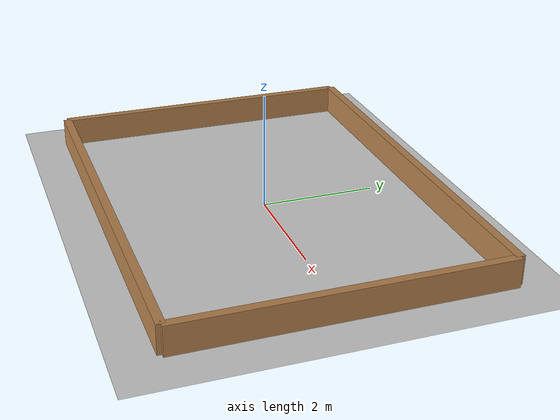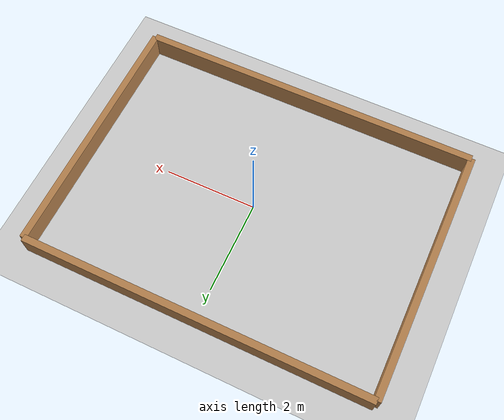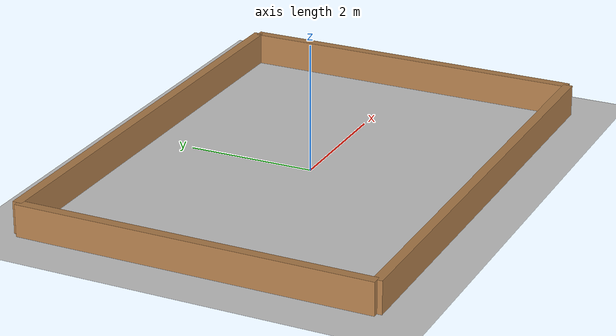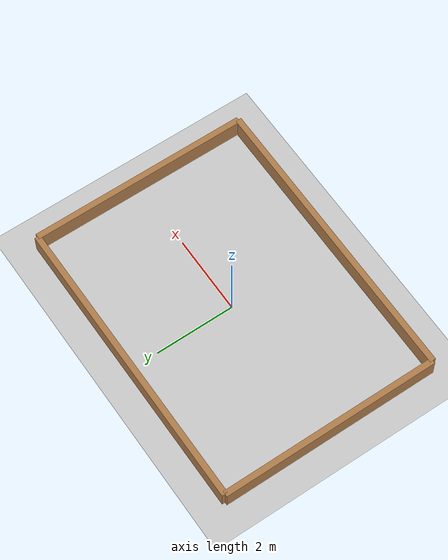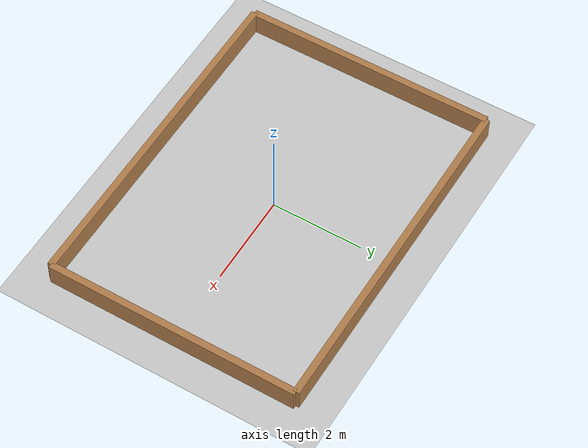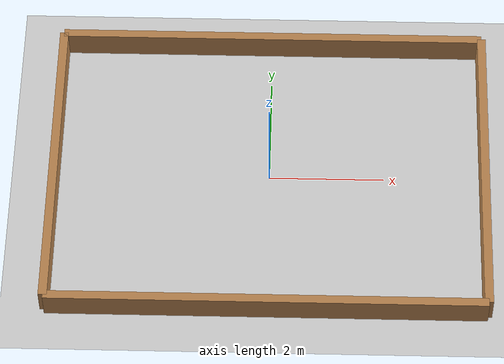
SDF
<sdf version="1.8">
 <world name="car_world">
  <physics name="1ms" type="ignored">
   <max_step_size>0.001</max_step_size>
   <real_time_factor>1.0</real_time_factor>
  </physics>
  <plugin filename="gz-sim-physics-system" name="gz::sim::systems::Physics"/>
  <plugin filename="gz-sim-user-commands-system" name="gz::sim::systems::UserCommands"/>
  <plugin filename="gz-sim-scene-broadcaster-system" name="gz::sim::systems::SceneBroadcaster"/>
  <plugin filename="gz-sim-sensors-system" name="gz::sim::systems::Sensors">
   <render_engine>ogre2</render_engine>
  </plugin>
  <plugin filename="BasicSystem" name="ros_gz_example_gazebo::BasicSystem"/>
  <plugin filename="FullSystem" name="ros_gz_example_gazebo::FullSystem"/>
  <light type="directional" name="sun">
   <pose>0 0 10 0 0 0</pose>
   <diffuse>0.8 0.8 0.8 1</diffuse>
   <specular>0.2 0.2 0.2 1</specular>
   <attenuation>
    <range>1000</range>
    <constant>0.9</constant>
    <linear>0.01</linear>
    <quadratic>0.001</quadratic>
   </attenuation>
   <direction>-0.5 0.1 -0.9</direction>
  </light>
  <model name="ground_plane">
   <static>true</static>
   <link name="link">
    <collision name="collision"><geometry><plane><normal>0 0 1</normal></plane></geometry></collision>
    <visual name="visual">
     <geometry><plane><normal>0 0 1</normal><size>100 100</size></plane></geometry>
     <material>
      <ambient>0.8 0.8 0.8 1</ambient>
      <diffuse>0.8 0.8 0.8 1</diffuse>
      <specular>0.8 0.8 0.8 1</specular>
     </material>
    </visual>
   </link>
  </model>
  <model name="obstacles">
   <include merge="true"><uri>package://f1_tenth_description/models/outer_walls</uri></include>
  </model>
 </world>
</sdf>

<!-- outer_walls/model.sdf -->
<sdf version='1.8'>
  <model name='outer_walls'>
    <pose>0 0 0 0 0 0</pose>
    <link name='Wall_1'>
      <collision name='Wall_1_Collision'>
        <geometry>
          <box>
            <size>5.5 0.15 0.5</size>
          </box>
        </geometry>
        <pose>0 0 0.25 0 -0 0</pose>
      </collision>
      <visual name='Wall_1_Visual'>
        <pose>0 0 0.25 0 -0 0</pose>
        <geometry>
          <box>
            <size>5.5 0.15 0.5</size>
          </box>
        </geometry>
        <material>
          <script>
            <uri>file://media/materials/scripts/gazebo.material</uri>
            <name>Gazebo/Wood</name>
          </script>
          <ambient>1 1 1 1</ambient>
        </material>
      </visual>
      <pose>-3.75 0 0 0 0 1.57</pose>
    </link>
    <link name='Wall_2'>
      <collision name='Wall_2_Collision'>
        <geometry>
          <box>
            <size>7.5 0.15 0.5</size>
          </box>
        </geometry>
        <pose>0 0 0.25 0 -0 0</pose>
      </collision>
      <visual name='Wall_2_Visual'>
        <pose>0 0 0.25 0 -0 0</pose>
        <geometry>
          <box>
            <size>7.5 0.15 0.5</size>
          </box>
        </geometry>
        <material>
          <script>
            <uri>file://media/materials/scripts/gazebo.material</uri>
            <name>Gazebo/Wood</name>
          </script>
          <ambient>1 1 1 1</ambient>
        </material>
      </visual>
      <pose>0 2.75 0 0 0 0</pose>
    </link>
    <link name='Wall_3'>
      <collision name='Wall_3_Collision'>
        <geometry>
          <box>
            <size>5.5 0.15 0.5</size>
          </box>
        </geometry>
        <pose>0 0 0.25 0 -0 0</pose>
      </collision>
      <visual name='Wall_3_Visual'>
        <pose>0 0 0.25 0 -0 0</pose>
        <geometry>
          <box>
            <size>5.5 0.15 0.5</size>
          </box>
        </geometry>
        <material>
          <script>
            <uri>file://media/materials/scripts/gazebo.material</uri>
            <name>Gazebo/Wood</name>
          </script>
          <ambient>1 1 1 1</ambient>
        </material>
      </visual>
      <pose>3.75 0 0 0 0 1.57</pose>
    </link>
    <link name='Wall_4'>
      <collision name='Wall_4_Collision'>
        <geometry>
          <box>
            <size>7.5 0.15 0.5</size>
          </box>
        </geometry>
        <pose>0 0 0.25 0 -0 0</pose>
      </collision>
      <visual name='Wall_4_Visual'>
        <pose>0 0 0.25 0 -0 0</pose>
        <geometry>
          <box>
            <size>7.5 0.15 0.5</size>
          </box>
        </geometry>
        <material>
          <script>
            <uri>file://media/materials/scripts/gazebo.material</uri>
            <name>Gazebo/Wood</name>
          </script>
          <ambient>1 1 1 1</ambient>
        </material>
      </visual>
      <pose>0 -2.75 0 0 0 0</pose>
    </link>
    <static>1</static>
  </model>
</sdf>
